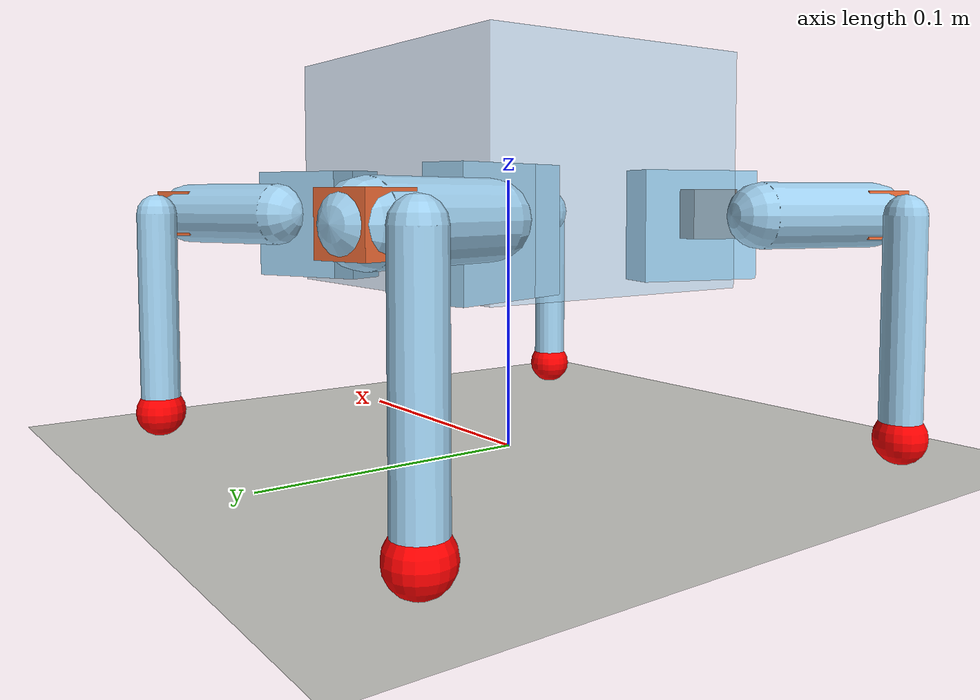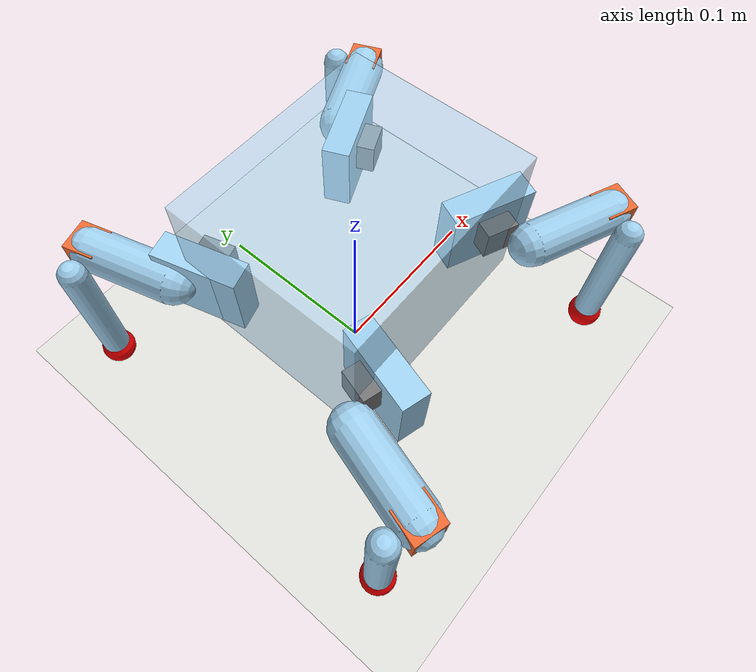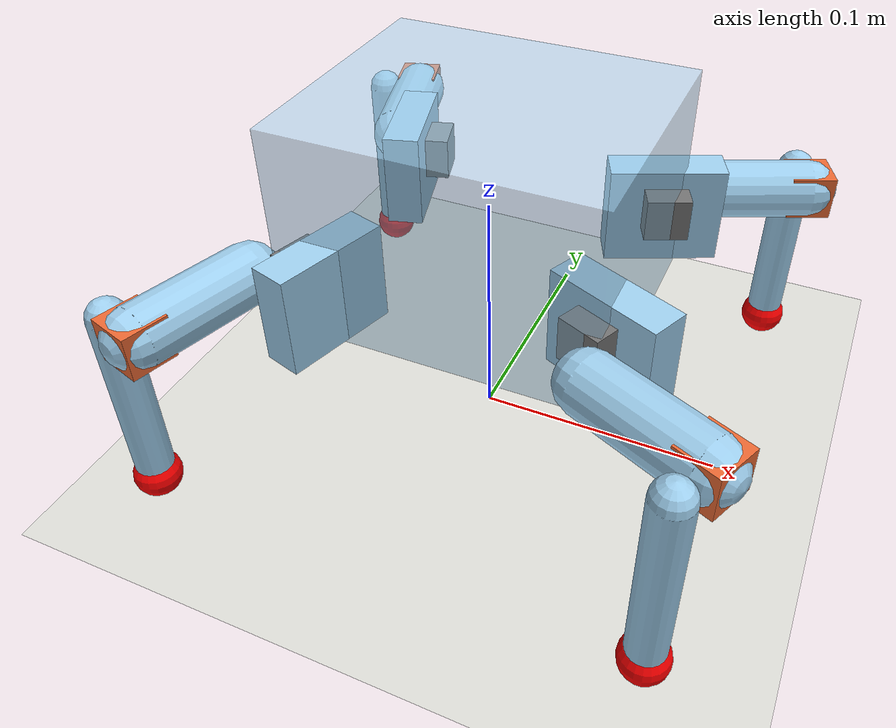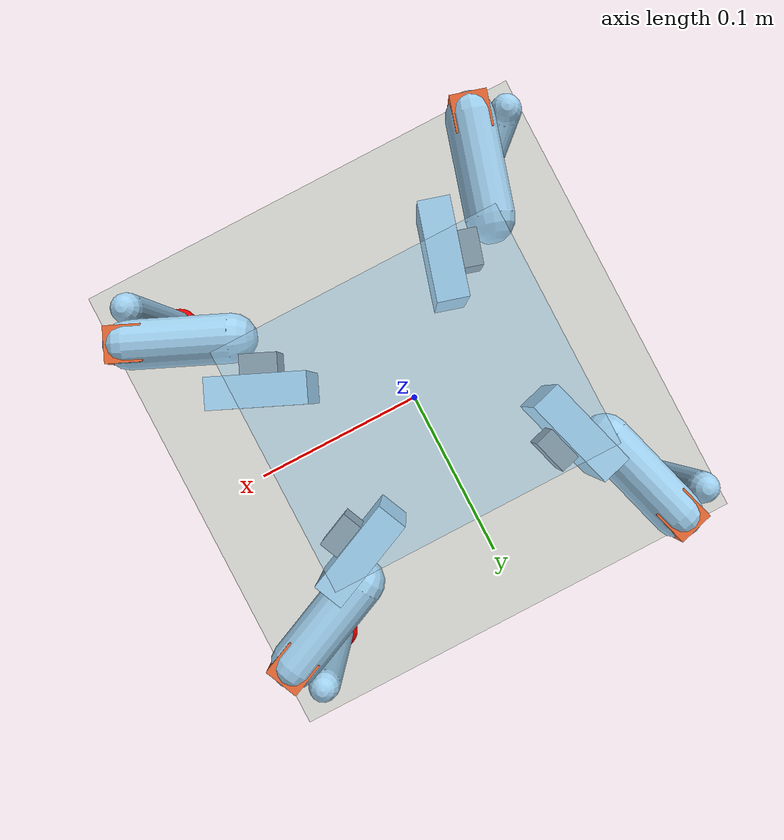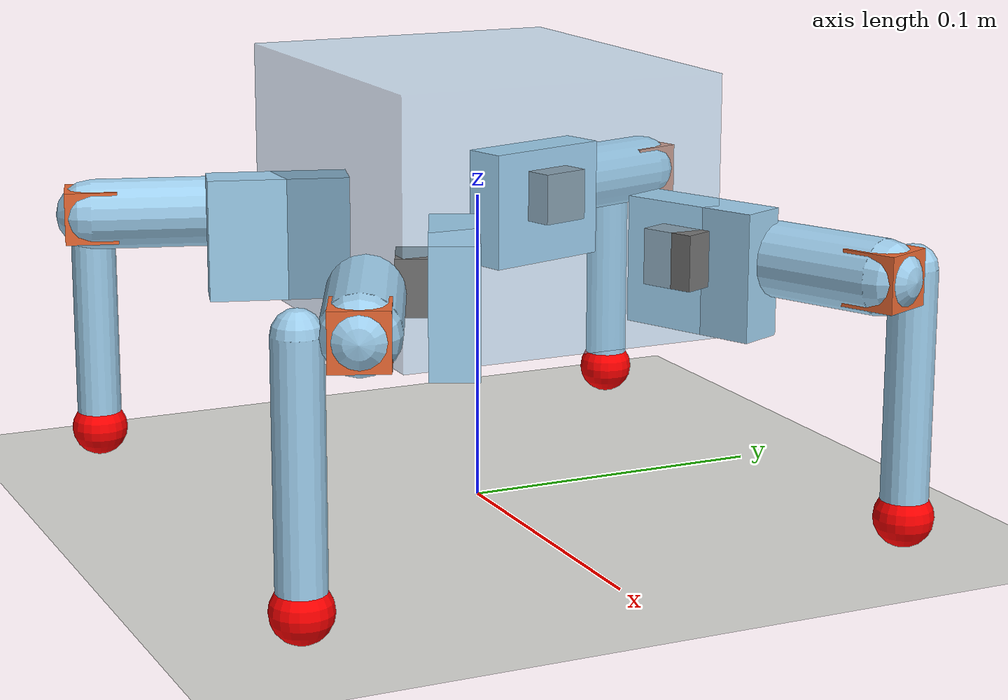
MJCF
<mujoco model="cubebot_12dof">
  <compiler angle="radian" autolimits="true" />
  <option timestep="0.002" integrator="implicitfast" solver="Newton" iterations="4" ls_iterations="8" />
  <default>
    <joint armature="0" damping="0.004" />
    <position kp="6.60190619" kv="0.149642857" forcerange="-0.9218 0.9218" />
    <geom friction="0.8 0.02 0.001" condim="3" solref="0.008 1" />
  </default>
  <worldbody>
    <light pos="0 0 1.5" dir="0 0 -1" directional="true" />
    <geom name="floor" type="plane" size="3 3 0.05" rgba="0.86 0.86 0.84 1" />
    <body name="trunk" pos="0 0 0.1030241">
      <inertial pos="-0.00447376713 0.000204821175 -0.00986828423" mass="0.6347" fullinertia="0.000722105987 0.000924219618 0.00100775143 -3.23158973e-06 3.20299307e-06 -3.14287695e-06" />
      <freejoint name="root" />
      <geom name="trunk_col" type="box" size="0.0625 0.0525 0.0412" mass="0" contype="1" conaffinity="1" rgba="0.62 0.81 0.93 0.5" />
      <body name="FL_hip" pos="0.0465 0.0385 -0.0232" euler="0 0 0.415843703">
        <joint name="FL_yaw" type="hinge" axis="0 0 1" range="-1.6 1.6" />
        <geom mass="0.00187698" type="box" size="0.023 0.0075 0.02" pos="0.0125 0.0085 0.00375" name="FL_hipbr_col" group="3" rgba="0.5 0.5 0.5 0.3" />
        <geom type="box" size="0.023 0.0075 0.02" pos="0.0125 0.0085 0.00375" name="FL_hipbr_vis" group="2" rgba="0.62 0.81 0.93 1" contype="0" conaffinity="0" mass="0" />
        <geom name="FL_pitchservo" type="box" size="0.00873149493 0.00873149493 0.00873149493" pos="0.012 0 0.008" mass="0.009" contype="0" conaffinity="0" rgba="0.45 0.45 0.45 1" />
        <body name="FL_femur" pos="0.025 0.017 0.0075">
          <joint name="FL_pitch" type="hinge" axis="0 1 0" range="-1.4 1.4" />
          <geom mass="0.00376872" type="capsule" size="0.01175" fromto="0 0 0 0.048 0 0" name="FL_femur_col" group="3" rgba="0.5 0.5 0.5 0.3" />
          <geom type="capsule" size="0.01175" fromto="0 0 0 0.048 0 0" name="FL_femur_vis" group="2" rgba="0.62 0.81 0.93 1" contype="0" conaffinity="0" mass="0" />
          <geom name="FL_kneeservo" type="box" size="0.00873149493 0.00873149493 0.00873149493" pos="0.048 0 0" mass="0.009" contype="0" conaffinity="0" rgba="0.92 0.41 0.20 1" />
          <body name="FL_tibia" pos="0.048 0 0">
            <joint name="FL_knee" type="hinge" axis="0 1 0" range="-2.2 2.2" />
            <geom mass="0.00379332" type="capsule" size="0.0075" fromto="0 0.017 0 0 0.017 -0.0788241" name="FL_tibia_col" group="3" rgba="0.5 0.5 0.5 0.3" />
            <geom type="capsule" size="0.0075" fromto="0 0.017 0 0 0.017 -0.0788241" name="FL_tibia_vis" group="2" rgba="0.62 0.81 0.93 1" contype="0" conaffinity="0" mass="0" />
            <geom mass="0.0018029" type="sphere" size="0.0085" pos="0 0.017 -0.0788241" name="FL_foot_col" group="3" rgba="0.5 0.5 0.5 0.3" />
            <geom type="sphere" size="0.0085" pos="0 0.017 -0.0788241" name="FL_foot_vis" group="2" rgba="0.35 0.35 0.35 1" contype="0" conaffinity="0" mass="0" />
            <site name="FL_foot_site" pos="0 0.017 -0.0788241" size="0.0095" rgba="1 0 0 1" />
          </body>
        </body>
      </body>
      <body name="FR_hip" pos="0.0465 -0.0385 -0.0232" euler="0 0 -0.415843703">
        <joint name="FR_yaw" type="hinge" axis="0 0 1" range="-1.6 1.6" />
        <geom mass="0.00187698" type="box" size="0.023 0.0075 0.02" pos="0.0125 0.0085 0.00375" name="FR_hipbr_col" group="3" rgba="0.5 0.5 0.5 0.3" />
        <geom type="box" size="0.023 0.0075 0.02" pos="0.0125 0.0085 0.00375" name="FR_hipbr_vis" group="2" rgba="0.62 0.81 0.93 1" contype="0" conaffinity="0" mass="0" />
        <geom name="FR_pitchservo" type="box" size="0.00873149493 0.00873149493 0.00873149493" pos="0.012 0 0.008" mass="0.009" contype="0" conaffinity="0" rgba="0.45 0.45 0.45 1" />
        <body name="FR_femur" pos="0.025 -0.017 0.0075">
          <joint name="FR_pitch" type="hinge" axis="0 1 0" range="-1.4 1.4" />
          <geom mass="0.00376872" type="capsule" size="0.01175" fromto="0 0 0 0.048 0 0" name="FR_femur_col" group="3" rgba="0.5 0.5 0.5 0.3" />
          <geom type="capsule" size="0.01175" fromto="0 0 0 0.048 0 0" name="FR_femur_vis" group="2" rgba="0.62 0.81 0.93 1" contype="0" conaffinity="0" mass="0" />
          <geom name="FR_kneeservo" type="box" size="0.00873149493 0.00873149493 0.00873149493" pos="0.048 0 0" mass="0.009" contype="0" conaffinity="0" rgba="0.92 0.41 0.20 1" />
          <body name="FR_tibia" pos="0.048 0 0">
            <joint name="FR_knee" type="hinge" axis="0 1 0" range="-2.2 2.2" />
            <geom mass="0.00379332" type="capsule" size="0.0075" fromto="0 -0.017 0 0 -0.017 -0.0788241" name="FR_tibia_col" group="3" rgba="0.5 0.5 0.5 0.3" />
            <geom type="capsule" size="0.0075" fromto="0 -0.017 0 0 -0.017 -0.0788241" name="FR_tibia_vis" group="2" rgba="0.62 0.81 0.93 1" contype="0" conaffinity="0" mass="0" />
            <geom mass="0.0018029" type="sphere" size="0.0085" pos="0 -0.017 -0.0788241" name="FR_foot_col" group="3" rgba="0.5 0.5 0.5 0.3" />
            <geom type="sphere" size="0.0085" pos="0 -0.017 -0.0788241" name="FR_foot_vis" group="2" rgba="0.35 0.35 0.35 1" contype="0" conaffinity="0" mass="0" />
            <site name="FR_foot_site" pos="0 -0.017 -0.0788241" size="0.0095" rgba="1 0 0 1" />
          </body>
        </body>
      </body>
      <body name="BL_hip" pos="-0.0465 0.0385 -0.0232" euler="0 0 1.85399501">
        <joint name="BL_yaw" type="hinge" axis="0 0 1" range="-1.6 1.6" />
        <geom mass="0.00187698" type="box" size="0.023 0.0075 0.02" pos="0.0125 0.0085 0.00375" name="BL_hipbr_col" group="3" rgba="0.5 0.5 0.5 0.3" />
        <geom type="box" size="0.023 0.0075 0.02" pos="0.0125 0.0085 0.00375" name="BL_hipbr_vis" group="2" rgba="0.62 0.81 0.93 1" contype="0" conaffinity="0" mass="0" />
        <geom name="BL_pitchservo" type="box" size="0.00873149493 0.00873149493 0.00873149493" pos="0.012 0 0.008" mass="0.009" contype="0" conaffinity="0" rgba="0.45 0.45 0.45 1" />
        <body name="BL_femur" pos="0.025 0.017 0.0075">
          <joint name="BL_pitch" type="hinge" axis="0 1 0" range="-1.4 1.4" />
          <geom mass="0.00376872" type="capsule" size="0.01175" fromto="0 0 0 0.048 0 0" name="BL_femur_col" group="3" rgba="0.5 0.5 0.5 0.3" />
          <geom type="capsule" size="0.01175" fromto="0 0 0 0.048 0 0" name="BL_femur_vis" group="2" rgba="0.62 0.81 0.93 1" contype="0" conaffinity="0" mass="0" />
          <geom name="BL_kneeservo" type="box" size="0.00873149493 0.00873149493 0.00873149493" pos="0.048 0 0" mass="0.009" contype="0" conaffinity="0" rgba="0.92 0.41 0.20 1" />
          <body name="BL_tibia" pos="0.048 0 0">
            <joint name="BL_knee" type="hinge" axis="0 1 0" range="-2.2 2.2" />
            <geom mass="0.00379332" type="capsule" size="0.0075" fromto="0 0.017 0 0 0.017 -0.0788241" name="BL_tibia_col" group="3" rgba="0.5 0.5 0.5 0.3" />
            <geom type="capsule" size="0.0075" fromto="0 0.017 0 0 0.017 -0.0788241" name="BL_tibia_vis" group="2" rgba="0.62 0.81 0.93 1" contype="0" conaffinity="0" mass="0" />
            <geom mass="0.0018029" type="sphere" size="0.0085" pos="0 0.017 -0.0788241" name="BL_foot_col" group="3" rgba="0.5 0.5 0.5 0.3" />
            <geom type="sphere" size="0.0085" pos="0 0.017 -0.0788241" name="BL_foot_vis" group="2" rgba="0.35 0.35 0.35 1" contype="0" conaffinity="0" mass="0" />
            <site name="BL_foot_site" pos="0 0.017 -0.0788241" size="0.0095" rgba="1 0 0 1" />
          </body>
        </body>
      </body>
      <body name="BR_hip" pos="-0.0465 -0.0385 -0.0232" euler="0 0 -1.85399501">
        <joint name="BR_yaw" type="hinge" axis="0 0 1" range="-1.6 1.6" />
        <geom mass="0.00187698" type="box" size="0.023 0.0075 0.02" pos="0.0125 0.0085 0.00375" name="BR_hipbr_col" group="3" rgba="0.5 0.5 0.5 0.3" />
        <geom type="box" size="0.023 0.0075 0.02" pos="0.0125 0.0085 0.00375" name="BR_hipbr_vis" group="2" rgba="0.62 0.81 0.93 1" contype="0" conaffinity="0" mass="0" />
        <geom name="BR_pitchservo" type="box" size="0.00873149493 0.00873149493 0.00873149493" pos="0.012 0 0.008" mass="0.009" contype="0" conaffinity="0" rgba="0.45 0.45 0.45 1" />
        <body name="BR_femur" pos="0.025 -0.017 0.0075">
          <joint name="BR_pitch" type="hinge" axis="0 1 0" range="-1.4 1.4" />
          <geom mass="0.00376872" type="capsule" size="0.01175" fromto="0 0 0 0.048 0 0" name="BR_femur_col" group="3" rgba="0.5 0.5 0.5 0.3" />
          <geom type="capsule" size="0.01175" fromto="0 0 0 0.048 0 0" name="BR_femur_vis" group="2" rgba="0.62 0.81 0.93 1" contype="0" conaffinity="0" mass="0" />
          <geom name="BR_kneeservo" type="box" size="0.00873149493 0.00873149493 0.00873149493" pos="0.048 0 0" mass="0.009" contype="0" conaffinity="0" rgba="0.92 0.41 0.20 1" />
          <body name="BR_tibia" pos="0.048 0 0">
            <joint name="BR_knee" type="hinge" axis="0 1 0" range="-2.2 2.2" />
            <geom mass="0.00379332" type="capsule" size="0.0075" fromto="0 -0.017 0 0 -0.017 -0.0788241" name="BR_tibia_col" group="3" rgba="0.5 0.5 0.5 0.3" />
            <geom type="capsule" size="0.0075" fromto="0 -0.017 0 0 -0.017 -0.0788241" name="BR_tibia_vis" group="2" rgba="0.62 0.81 0.93 1" contype="0" conaffinity="0" mass="0" />
            <geom mass="0.0018029" type="sphere" size="0.0085" pos="0 -0.017 -0.0788241" name="BR_foot_col" group="3" rgba="0.5 0.5 0.5 0.3" />
            <geom type="sphere" size="0.0085" pos="0 -0.017 -0.0788241" name="BR_foot_vis" group="2" rgba="0.35 0.35 0.35 1" contype="0" conaffinity="0" mass="0" />
            <site name="BR_foot_site" pos="0 -0.017 -0.0788241" size="0.0095" rgba="1 0 0 1" />
          </body>
        </body>
      </body>
      <geom name="cmp_cell_18650_1" type="box" size="0.0325 0.00925 0.00925" pos="0 -0.03 -0.028" group="4" mass="0" contype="0" conaffinity="0" rgba="0.92 0.41 0.20 0.45" />
      <geom name="cmp_cell_18650_2" type="box" size="0.0325 0.00925 0.00925" pos="0 -0.01 -0.028" group="4" mass="0" contype="0" conaffinity="0" rgba="0.92 0.41 0.20 0.45" />
      <geom name="cmp_cell_18650_3" type="box" size="0.0325 0.00925 0.00925" pos="0 0.01 -0.028" group="4" mass="0" contype="0" conaffinity="0" rgba="0.92 0.41 0.20 0.45" />
      <geom name="cmp_cell_18650_4" type="box" size="0.0325 0.00925 0.00925" pos="0 0.03 -0.028" group="4" mass="0" contype="0" conaffinity="0" rgba="0.92 0.41 0.20 0.45" />
      <geom name="cmp_bms_4s" type="box" size="0.025 0.01 0.002" pos="-0.045 0 -0.014" group="4" mass="0" contype="0" conaffinity="0" rgba="0.92 0.41 0.20 0.45" />
      <geom name="cmp_ubec_left" type="box" size="0.015 0.0075 0.005" pos="-0.045 0.035 -0.014" group="4" mass="0" contype="0" conaffinity="0" rgba="0.92 0.41 0.20 0.45" />
      <geom name="cmp_ubec_right" type="box" size="0.015 0.0075 0.005" pos="-0.045 -0.035 -0.014" group="4" mass="0" contype="0" conaffinity="0" rgba="0.92 0.41 0.20 0.45" />
      <geom name="cmp_power_switch" type="box" size="0.01 0.0065 0.0065" pos="-0.058 0 0.01" group="4" mass="0" contype="0" conaffinity="0" rgba="0.92 0.41 0.20 0.45" />
      <geom name="cmp_power_conn" type="box" size="0.006 0.006 0.006" pos="-0.058 0.02 0.01" group="4" mass="0" contype="0" conaffinity="0" rgba="0.92 0.41 0.20 0.45" />
      <geom name="cmp_usbc_conn" type="box" size="0.006 0.006 0.006" pos="-0.058 -0.02 0.01" group="4" mass="0" contype="0" conaffinity="0" rgba="0.92 0.41 0.20 0.45" />
      <geom name="cmp_raspberry_pi5" type="box" size="0.0425 0.028 0.006" pos="0 0 0.006" group="4" mass="0" contype="0" conaffinity="0" rgba="0.92 0.41 0.20 0.45" />
      <geom name="cmp_pico2" type="box" size="0.0255 0.0105 0.002" pos="0.03 0.035 0.022" group="4" mass="0" contype="0" conaffinity="0" rgba="0.92 0.41 0.20 0.45" />
      <geom name="cmp_pcb_proto" type="box" size="0.035 0.025 0.0015" pos="0 0 0.022" group="4" mass="0" contype="0" conaffinity="0" rgba="0.92 0.41 0.20 0.45" />
      <geom name="cmp_gpio_header" type="box" size="0.0255 0.0025 0.0045" pos="0 0.025 0.014" group="4" mass="0" contype="0" conaffinity="0" rgba="0.92 0.41 0.20 0.45" />
      <geom name="cmp_pin_headers" type="box" size="0.02 0.0025 0.0045" pos="0 -0.025 0.022" group="4" mass="0" contype="0" conaffinity="0" rgba="0.92 0.41 0.20 0.45" />
      <geom name="cmp_wt901_imu" type="box" size="0.018 0.008 0.004" pos="0 0 0.014" group="4" mass="0" contype="0" conaffinity="0" rgba="0.92 0.41 0.20 0.45" />
      <geom name="cmp_camera_v3" type="box" size="0.0125 0.012 0.0045" pos="0.055 0 0.012" group="4" mass="0" contype="0" conaffinity="0" rgba="0.92 0.41 0.20 0.45" />
      <geom name="cmp_yaw_servo_FL" type="box" size="0.0115 0.006 0.0145" pos="0.0465 0.0385 -0.02" group="4" mass="0" contype="0" conaffinity="0" rgba="0.92 0.41 0.20 0.45" />
      <geom name="cmp_yaw_servo_FR" type="box" size="0.0115 0.006 0.0145" pos="0.0465 -0.0385 -0.02" group="4" mass="0" contype="0" conaffinity="0" rgba="0.92 0.41 0.20 0.45" />
      <geom name="cmp_yaw_servo_BL" type="box" size="0.0115 0.006 0.0145" pos="-0.0465 0.0385 -0.02" group="4" mass="0" contype="0" conaffinity="0" rgba="0.92 0.41 0.20 0.45" />
      <geom name="cmp_yaw_servo_BR" type="box" size="0.0115 0.006 0.0145" pos="-0.0465 -0.0385 -0.02" group="4" mass="0" contype="0" conaffinity="0" rgba="0.92 0.41 0.20 0.45" />
      <geom name="cmp_bottom_case" type="box" size="0.0575 0.0465 0.009" pos="0 0 -0.036" group="4" mass="0" contype="0" conaffinity="0" rgba="0.92 0.41 0.20 0.45" />
      <geom name="cmp_top_case" type="box" size="0.0625 0.0525 0.02" pos="0 0 0.034" group="4" mass="0" contype="0" conaffinity="0" rgba="0.92 0.41 0.20 0.45" />
      <geom name="cmp_wiring_harness" type="box" size="0.05 0.04 0.03" pos="0 0 0" group="4" mass="0" contype="0" conaffinity="0" rgba="0.92 0.41 0.20 0.45" />
      <geom name="cmp_batt_connectors" type="box" size="0.02 0.015 0.0075" pos="-0.03 0 -0.02" group="4" mass="0" contype="0" conaffinity="0" rgba="0.92 0.41 0.20 0.45" />
      <geom name="cmp_screws_m2x8" type="box" size="0.055 0.045 0.035" pos="0 0 0" group="4" mass="0" contype="0" conaffinity="0" rgba="0.92 0.41 0.20 0.45" />
      <geom name="cmp_screws_m2x10" type="box" size="0.055 0.045 0.035" pos="0 0 0" group="4" mass="0" contype="0" conaffinity="0" rgba="0.92 0.41 0.20 0.45" />
      <geom name="cmp_screws_m2x15" type="box" size="0.055 0.045 0.035" pos="0 0 0" group="4" mass="0" contype="0" conaffinity="0" rgba="0.92 0.41 0.20 0.45" />
      <geom name="cmp_screws_m3x10" type="box" size="0.045 0.03 0.005" pos="0 0 -0.036" group="4" mass="0" contype="0" conaffinity="0" rgba="0.92 0.41 0.20 0.45" />
      <geom name="cmp_real_shells_delta" type="box" size="0.055 0.045 0.02" pos="-0.005 0 -0.004" group="4" mass="0" contype="0" conaffinity="0" rgba="0.92 0.41 0.20 0.45" />
      <site name="imu" pos="0 0 0" size="0.008" rgba="0 1 0 0.6" />
    </body>
  </worldbody>
  <actuator>
    <position name="act_FL_yaw" joint="FL_yaw" ctrlrange="-1.6 1.6" forcerange="-0.17652 0.17652" kp="1.26423" kv="0.0168596" />
    <position name="act_FL_pitch" joint="FL_pitch" ctrlrange="-1.4 1.4" forcerange="-0.245166 0.245166" kp="1.75587" kv="0.0234161" />
    <position name="act_FL_knee" joint="FL_knee" ctrlrange="-2.2 2.2" forcerange="-0.245166 0.245166" kp="1.75587" kv="0.0234161" />
    <position name="act_FR_yaw" joint="FR_yaw" ctrlrange="-1.6 1.6" forcerange="-0.17652 0.17652" kp="1.26423" kv="0.0168596" />
    <position name="act_FR_pitch" joint="FR_pitch" ctrlrange="-1.4 1.4" forcerange="-0.245166 0.245166" kp="1.75587" kv="0.0234161" />
    <position name="act_FR_knee" joint="FR_knee" ctrlrange="-2.2 2.2" forcerange="-0.245166 0.245166" kp="1.75587" kv="0.0234161" />
    <position name="act_BL_yaw" joint="BL_yaw" ctrlrange="-1.6 1.6" forcerange="-0.17652 0.17652" kp="1.26423" kv="0.0168596" />
    <position name="act_BL_pitch" joint="BL_pitch" ctrlrange="-1.4 1.4" forcerange="-0.245166 0.245166" kp="1.75587" kv="0.0234161" />
    <position name="act_BL_knee" joint="BL_knee" ctrlrange="-2.2 2.2" forcerange="-0.245166 0.245166" kp="1.75587" kv="0.0234161" />
    <position name="act_BR_yaw" joint="BR_yaw" ctrlrange="-1.6 1.6" forcerange="-0.17652 0.17652" kp="1.26423" kv="0.0168596" />
    <position name="act_BR_pitch" joint="BR_pitch" ctrlrange="-1.4 1.4" forcerange="-0.245166 0.245166" kp="1.75587" kv="0.0234161" />
    <position name="act_BR_knee" joint="BR_knee" ctrlrange="-2.2 2.2" forcerange="-0.245166 0.245166" kp="1.75587" kv="0.0234161" />
  </actuator>
  <keyframe>
    <key name="stand" qpos="0 0 0.1030241 1 0 0 0 0 0 0 0 0 0 0 0 0 0 0 0" ctrl="0 0 0 0 0 0 0 0 0 0 0 0" />
  </keyframe>
  <visual>
    <global offwidth="1920" offheight="1080" />
  </visual>
  <contact>
    <exclude body1="trunk" body2="FL_hip" />
    <exclude body1="trunk" body2="FL_femur" />
    <exclude body1="trunk" body2="FL_tibia" />
    <exclude body1="trunk" body2="FR_hip" />
    <exclude body1="trunk" body2="FR_femur" />
    <exclude body1="trunk" body2="FR_tibia" />
    <exclude body1="trunk" body2="BL_hip" />
    <exclude body1="trunk" body2="BL_femur" />
    <exclude body1="trunk" body2="BL_tibia" />
    <exclude body1="trunk" body2="BR_hip" />
    <exclude body1="trunk" body2="BR_femur" />
    <exclude body1="trunk" body2="BR_tibia" />
  </contact>
  <sensor>
    <framequat name="imu_quat" objtype="site" objname="imu" />
    <gyro name="imu_gyro" site="imu" />
    <accelerometer name="imu_acc" site="imu" />
    <velocimeter name="trunk_vel" site="imu" />
    <touch name="FL_touch" site="FL_foot_site" />
    <touch name="FR_touch" site="FR_foot_site" />
    <touch name="BL_touch" site="BL_foot_site" />
    <touch name="BR_touch" site="BR_foot_site" />
  </sensor>
</mujoco>
